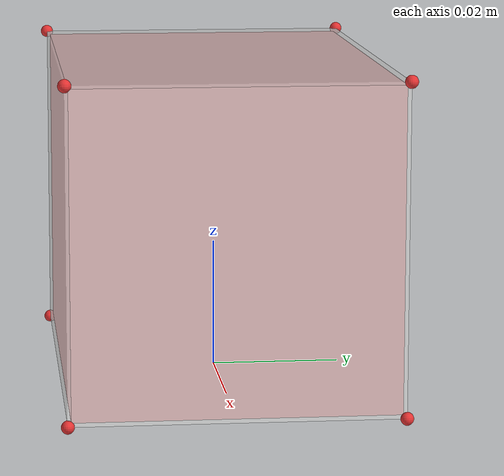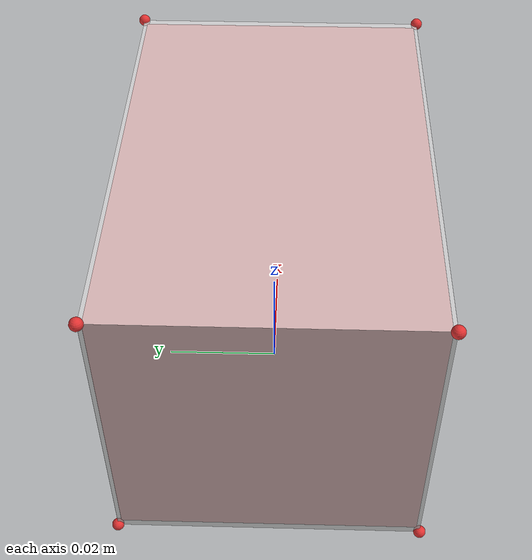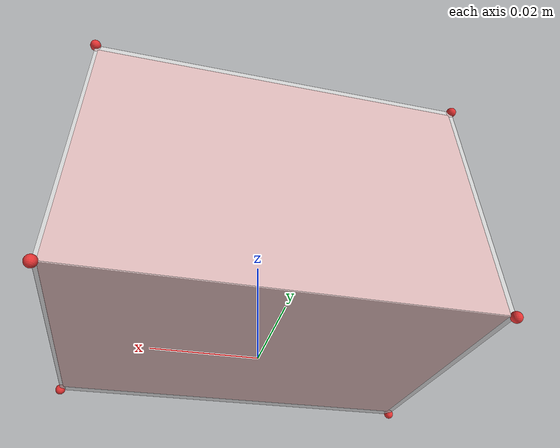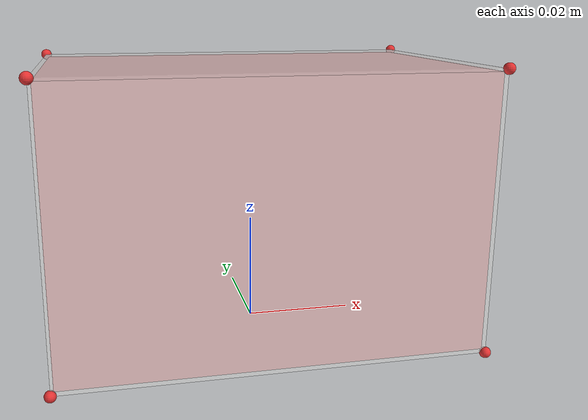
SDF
<?xml version="1.0"?>
<sdf version="1.7">
  <model name="foam_brick">
    <link name="base_link">
      <inertial>
        <pose>0 0 0.025 0 0 0 </pose>
        <mass>0.028</mass>
        <inertia>
          <ixx>1.17e-5</ixx>
          <ixy>0</ixy>
          <ixz>0</ixz>
          <iyy>1.9e-5</iyy>
          <iyz>0</iyz>
          <izz>1.9e-5</izz>
        </inertia>
      </inertial>
      <visual name="base_link">
        <pose>0 0 0.025 0 0 0</pose>
        <geometry>
          <box>
            <size>0.075 0.05 0.05</size>
          </box>
        </geometry>
        <material>
          <diffuse>0.9 0.9 0.9 0.8</diffuse>
        </material>
      </visual>
      <visual name="box_collision">
        <pose>0 0 0.025 0 0 0</pose>
        <geometry>
          <box>
            <size>0.074 0.049 0.049</size>
          </box>
        </geometry>
        <material>
          <diffuse>.9 .2 .2 1.0</diffuse>
        </material>
      </visual>
      <visual name="point_collision1">
        <pose>0.0375 0.025 0 0 0 0</pose>
        <geometry>
          <sphere>
            <radius>1e-3</radius>
          </sphere>
        </geometry>
        <material>
          <diffuse>.9 .2 .2 1.0</diffuse>
        </material>
      </visual>
      <visual name="point_collision2">
        <pose>0.0375 -0.025 0 0 0 0</pose>
        <geometry>
          <sphere>
            <radius>1e-3</radius>
          </sphere>
        </geometry>
        <material>
          <diffuse>.9 .2 .2 1.0</diffuse>
        </material>
      </visual>
      <visual name="point_collision3">
        <pose>-0.0375 0.025 0 0 0 0</pose>
        <geometry>
          <sphere>
            <radius>1e-3</radius>
          </sphere>
        </geometry>
        <material>
          <diffuse>.9 .2 .2 1.0</diffuse>
        </material>
      </visual>
      <visual name="point_collision4">
        <pose>-0.0375 -0.025 0 0 0 0</pose>
        <geometry>
          <sphere>
            <radius>1e-3</radius>
          </sphere>
        </geometry>
        <material>
          <diffuse>.9 .2 .2 1.0</diffuse>
        </material>
      </visual>
      <visual name="point_collision5">
        <pose>0.0375 0.025 0.05 0 0 0</pose>
        <geometry>
          <sphere>
            <radius>1e-3</radius>
          </sphere>
        </geometry>
        <material>
          <diffuse>.9 .2 .2 1.0</diffuse>
        </material>
      </visual>
      <visual name="point_collision6">
        <pose>0.0375 -0.025 0.05 0 0 0</pose>
        <geometry>
          <sphere>
            <radius>1e-3</radius>
          </sphere>
        </geometry>
        <material>
          <diffuse>.9 .2 .2 1.0</diffuse>
        </material>
      </visual>
      <visual name="point_collision7">
        <pose>-0.0375 0.025 0.05 0 0 0</pose>
        <geometry>
          <sphere>
            <radius>1e-3</radius>
          </sphere>
        </geometry>
        <material>
          <diffuse>.9 .2 .2 1.0</diffuse>
        </material>
      </visual>
      <visual name="point_collision8">
        <pose>-0.0375 -0.025 0.05 0 0 0</pose>
        <geometry>
          <sphere>
            <radius>1e-3</radius>
          </sphere>
        </geometry>
        <material>
          <diffuse>.9 .2 .2 1.0</diffuse>
        </material>
      </visual>
      <collision name="box_collision">
        <pose>0 0 0.025 0 0 0</pose>
        <geometry>
          <box>
            <size>0.074 0.049 0.049</size>
          </box>
        </geometry>
      </collision>
      <collision name="point_collision1">
        <pose>0.0375 0.025 0 0 0 0</pose>
        <geometry>
          <sphere>
            <radius>1e-7</radius>
          </sphere>
        </geometry>
      </collision>
      <collision name="point_collision2">
        <pose>0.0375 -0.025 0 0 0 0</pose>
        <geometry>
          <sphere>
            <radius>1e-7</radius>
          </sphere>
        </geometry>
      </collision>
      <collision name="point_collision3">
        <pose>-0.0375 0.025 0 0 0 0</pose>
        <geometry>
          <sphere>
            <radius>1e-7</radius>
          </sphere>
        </geometry>
      </collision>
      <collision name="point_collision4">
        <pose>-0.0375 -0.025 0 0 0 0</pose>
        <geometry>
          <sphere>
            <radius>1e-7</radius>
          </sphere>
        </geometry>
      </collision>
      <collision name="point_collision5">
        <pose>0.0375 0.025 0.05 0 0 0</pose>
        <geometry>
          <sphere>
            <radius>1e-7</radius>
          </sphere>
        </geometry>
      </collision>
      <collision name="point_collision6">
        <pose>0.0375 -0.025 0.05 0 0 0</pose>
        <geometry>
          <sphere>
            <radius>1e-7</radius>
          </sphere>
        </geometry>
      </collision>
      <collision name="point_collision7">
        <pose>-0.0375 0.025 0.05 0 0 0</pose>
        <geometry>
          <sphere>
            <radius>1e-7</radius>
          </sphere>
        </geometry>
      </collision>
      <collision name="point_collision8">
        <pose>-0.0375 -0.025 0.05 0 0 0</pose>
        <geometry>
          <sphere>
            <radius>1e-7</radius>
          </sphere>
        </geometry>
      </collision>
    </link>
  </model>
</sdf>
